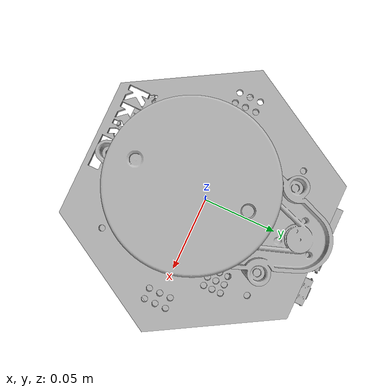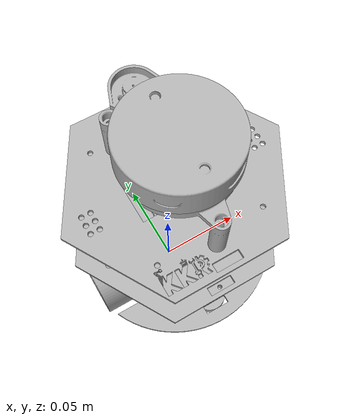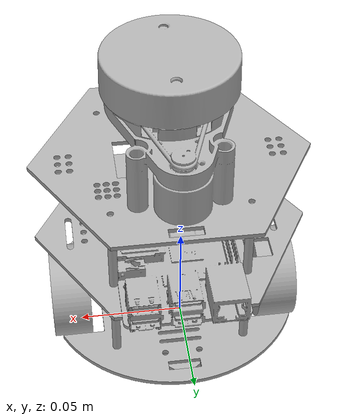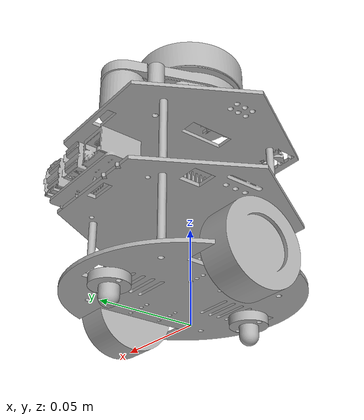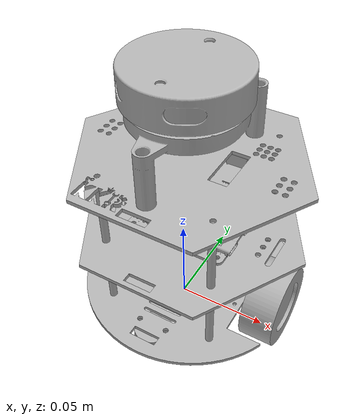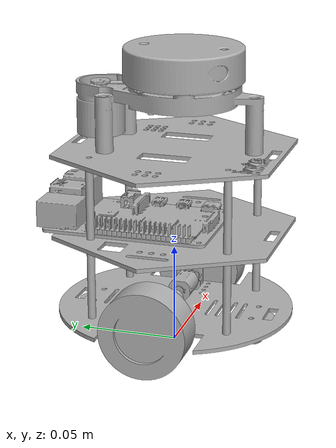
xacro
<?xml version="1.0" ?>
<robot name="bumpy" xmlns:xacro="http://www.ros.org/wiki/xacro">

<xacro:include filename="$(find bumpy_description)/urdf/materials.xacro" />
<xacro:include filename="$(find bumpy_description)/urdf/bumpy.trans" />
<xacro:include filename="$(find bumpy_description)/urdf/bumpy.gazebo" />
<link name="base_link">
  <inertial>
    <origin xyz="0.005020150122786888 0.0006394317987033133 0.016160688670655576" rpy="0 0 0"/>
    <mass value="0.13196884858595095"/>
    <inertia ixx="0.000142" iyy="7.8e-05" izz="0.000219" ixy="0.0" iyz="0.0" ixz="0.0"/>
  </inertial>
  <visual>
    <origin xyz="0 0 0" rpy="0 0 0"/>
    <geometry>
      <mesh filename="package://bumpy_description/meshes/base_link.stl" scale="0.001 0.001 0.001"/>
    </geometry>
    <material name="silver"/>
  </visual>
  <collision>
    <origin xyz="0 0 0" rpy="0 0 0"/>
    <geometry>
      <mesh filename="package://bumpy_description/meshes/base_link.stl" scale="0.001 0.001 0.001"/>
    </geometry>
  </collision>
</link>

<link name="castor1_1">
  <inertial>
    <origin xyz="-0.007999849877212972 2.999094846981021e-07 -0.004550736602734329" rpy="0 0 0"/>
    <mass value="0.016913680348457787"/>
    <inertia ixx="1e-06" iyy="1e-06" izz="1e-06" ixy="0.0" iyz="0.0" ixz="0.0"/>
  </inertial>
  <visual>
    <origin xyz="-0.01302 0.041359 -0.015161" rpy="0 0 0"/>
    <geometry>
      <mesh filename="package://bumpy_description/meshes/castor1_1.stl" scale="0.001 0.001 0.001"/>
    </geometry>
    <material name="silver"/>
  </visual>
  <collision>
    <origin xyz="-0.01302 0.041359 -0.015161" rpy="0 0 0"/>
    <geometry>
      <mesh filename="package://bumpy_description/meshes/castor1_1.stl" scale="0.001 0.001 0.001"/>
    </geometry>
  </collision>
</link>

<link name="Castor_v1_1">
  <inertial>
    <origin xyz="0.00800015012278671 3.011613824502324e-07 -0.004550736602734461" rpy="0 0 0"/>
    <mass value="0.016913680348457787"/>
    <inertia ixx="1e-06" iyy="1e-06" izz="1e-06" ixy="0.0" iyz="-0.0" ixz="0.0"/>
  </inertial>
  <visual>
    <origin xyz="0.00298 -0.042641 -0.015161" rpy="0 0 0"/>
    <geometry>
      <mesh filename="package://bumpy_description/meshes/Castor_v1_1.stl" scale="0.001 0.001 0.001"/>
    </geometry>
    <material name="silver"/>
  </visual>
  <collision>
    <origin xyz="0.00298 -0.042641 -0.015161" rpy="0 0 0"/>
    <geometry>
      <mesh filename="package://bumpy_description/meshes/Castor_v1_1.stl" scale="0.001 0.001 0.001"/>
    </geometry>
  </collision>
</link>

<link name="j1_1">
  <inertial>
    <origin xyz="1.4967575224372753e-07 3.00014311116481e-07 0.019999688670655155" rpy="0 0 0"/>
    <mass value="0.003945840372908612"/>
    <inertia ixx="1e-06" iyy="1e-06" izz="0.0" ixy="0.0" iyz="0.0" ixz="0.0"/>
  </inertial>
  <visual>
    <origin xyz="0.02498 0.034359 -0.017161" rpy="0 0 0"/>
    <geometry>
      <mesh filename="package://bumpy_description/meshes/j1_1.stl" scale="0.001 0.001 0.001"/>
    </geometry>
    <material name="silver"/>
  </visual>
  <collision>
    <origin xyz="0.02498 0.034359 -0.017161" rpy="0 0 0"/>
    <geometry>
      <mesh filename="package://bumpy_description/meshes/j1_1.stl" scale="0.001 0.001 0.001"/>
    </geometry>
  </collision>
</link>

<link name="j2_1">
  <inertial>
    <origin xyz="1.5056982179822986e-07 3.0001431151893687e-07 0.01999968867065573" rpy="0 0 0"/>
    <mass value="0.003945840372908612"/>
    <inertia ixx="1e-06" iyy="1e-06" izz="0.0" ixy="0.0" iyz="0.0" ixz="0.0"/>
  </inertial>
  <visual>
    <origin xyz="-0.03502 0.034359 -0.017161" rpy="0 0 0"/>
    <geometry>
      <mesh filename="package://bumpy_description/meshes/j2_1.stl" scale="0.001 0.001 0.001"/>
    </geometry>
    <material name="silver"/>
  </visual>
  <collision>
    <origin xyz="-0.03502 0.034359 -0.017161" rpy="0 0 0"/>
    <geometry>
      <mesh filename="package://bumpy_description/meshes/j2_1.stl" scale="0.001 0.001 0.001"/>
    </geometry>
  </collision>
</link>

<link name="j3_1">
  <inertial>
    <origin xyz="1.5056982154842968e-07 3.0105739240449125e-07 0.01999968867065564" rpy="0 0 0"/>
    <mass value="0.003945840372908612"/>
    <inertia ixx="1e-06" iyy="1e-06" izz="0.0" ixy="0.0" iyz="0.0" ixz="0.0"/>
  </inertial>
  <visual>
    <origin xyz="-0.03502 -0.035641 -0.017161" rpy="0 0 0"/>
    <geometry>
      <mesh filename="package://bumpy_description/meshes/j3_1.stl" scale="0.001 0.001 0.001"/>
    </geometry>
    <material name="silver"/>
  </visual>
  <collision>
    <origin xyz="-0.03502 -0.035641 -0.017161" rpy="0 0 0"/>
    <geometry>
      <mesh filename="package://bumpy_description/meshes/j3_1.stl" scale="0.001 0.001 0.001"/>
    </geometry>
  </collision>
</link>

<link name="j4_1">
  <inertial>
    <origin xyz="1.4967575191413007e-07 3.0105739196040204e-07 0.01999968867065512" rpy="0 0 0"/>
    <mass value="0.003945840372908612"/>
    <inertia ixx="1e-06" iyy="1e-06" izz="0.0" ixy="0.0" iyz="0.0" ixz="0.0"/>
  </inertial>
  <visual>
    <origin xyz="0.02498 -0.035641 -0.017161" rpy="0 0 0"/>
    <geometry>
      <mesh filename="package://bumpy_description/meshes/j4_1.stl" scale="0.001 0.001 0.001"/>
    </geometry>
    <material name="silver"/>
  </visual>
  <collision>
    <origin xyz="0.02498 -0.035641 -0.017161" rpy="0 0 0"/>
    <geometry>
      <mesh filename="package://bumpy_description/meshes/j4_1.stl" scale="0.001 0.001 0.001"/>
    </geometry>
  </collision>
</link>

<link name="middle_plate_1">
  <inertial>
    <origin xyz="-0.029455713152360674 0.03467972994117939 0.0009996886706552452" rpy="0 0 0"/>
    <mass value="0.1564112211879933"/>
    <inertia ixx="0.00013" iyy="0.000129" izz="0.000259" ixy="-2e-06" iyz="0.0" ixz="-0.0"/>
  </inertial>
  <visual>
    <origin xyz="-0.03502 0.034359 -0.057161" rpy="0 0 0"/>
    <geometry>
      <mesh filename="package://bumpy_description/meshes/middle_plate_1.stl" scale="0.001 0.001 0.001"/>
    </geometry>
    <material name="silver"/>
  </visual>
  <collision>
    <origin xyz="-0.03502 0.034359 -0.057161" rpy="0 0 0"/>
    <geometry>
      <mesh filename="package://bumpy_description/meshes/middle_plate_1.stl" scale="0.001 0.001 0.001"/>
    </geometry>
  </collision>
</link>

<link name="top_plate_1">
  <inertial>
    <origin xyz="0.030159165906477957 -0.034399126332671524 0.0009996886639370567" rpy="0 0 0"/>
    <mass value="0.14869189176611397"/>
    <inertia ixx="0.000125" iyy="0.000129" izz="0.000255" ixy="3e-06" iyz="-0.0" ixz="-0.0"/>
  </inertial>
  <visual>
    <origin xyz="0.02498 -0.035641 -0.099161" rpy="0 0 0"/>
    <geometry>
      <mesh filename="package://bumpy_description/meshes/top_plate_1.stl" scale="0.001 0.001 0.001"/>
    </geometry>
    <material name="silver"/>
  </visual>
  <collision>
    <origin xyz="0.02498 -0.035641 -0.099161" rpy="0 0 0"/>
    <geometry>
      <mesh filename="package://bumpy_description/meshes/top_plate_1.stl" scale="0.001 0.001 0.001"/>
    </geometry>
  </collision>
</link>

<link name="Rasp_pi_v1_1">
  <inertial>
    <origin xyz="-0.02503888735258649 -0.004447661323638719 0.0049926779577120425" rpy="0 0 0"/>
    <mass value="0.14743973867042878"/>
    <inertia ixx="0.0001" iyy="4.3e-05" izz="0.000136" ixy="-1e-06" iyz="-1e-05" ixz="-0.0"/>
  </inertial>
  <visual>
    <origin xyz="-0.029874 -0.03964 -0.059161" rpy="0 0 0"/>
    <geometry>
      <mesh filename="package://bumpy_description/meshes/Rasp_pi_v1_1.stl" scale="0.001 0.001 0.001"/>
    </geometry>
    <material name="silver"/>
  </visual>
  <collision>
    <origin xyz="-0.029874 -0.03964 -0.059161" rpy="0 0 0"/>
    <geometry>
      <mesh filename="package://bumpy_description/meshes/Rasp_pi_v1_1.stl" scale="0.001 0.001 0.001"/>
    </geometry>
  </collision>
</link>

<link name="j7_1">
  <inertial>
    <origin xyz="1.5056982149291853e-07 3.0001431167159254e-07 0.019999688670655304" rpy="0 0 0"/>
    <mass value="0.003945840372908612"/>
    <inertia ixx="1e-06" iyy="1e-06" izz="0.0" ixy="0.0" iyz="0.0" ixz="0.0"/>
  </inertial>
  <visual>
    <origin xyz="-0.03502 0.034359 -0.059161" rpy="0 0 0"/>
    <geometry>
      <mesh filename="package://bumpy_description/meshes/j7_1.stl" scale="0.001 0.001 0.001"/>
    </geometry>
    <material name="silver"/>
  </visual>
  <collision>
    <origin xyz="-0.03502 0.034359 -0.059161" rpy="0 0 0"/>
    <geometry>
      <mesh filename="package://bumpy_description/meshes/j7_1.stl" scale="0.001 0.001 0.001"/>
    </geometry>
  </collision>
</link>

<link name="j6_1">
  <inertial>
    <origin xyz="1.5056982136107955e-07 3.010573925710247e-07 0.019999688670655304" rpy="0 0 0"/>
    <mass value="0.003945840372908612"/>
    <inertia ixx="1e-06" iyy="1e-06" izz="0.0" ixy="0.0" iyz="0.0" ixz="0.0"/>
  </inertial>
  <visual>
    <origin xyz="-0.03502 -0.035641 -0.059161" rpy="0 0 0"/>
    <geometry>
      <mesh filename="package://bumpy_description/meshes/j6_1.stl" scale="0.001 0.001 0.001"/>
    </geometry>
    <material name="silver"/>
  </visual>
  <collision>
    <origin xyz="-0.03502 -0.035641 -0.059161" rpy="0 0 0"/>
    <geometry>
      <mesh filename="package://bumpy_description/meshes/j6_1.stl" scale="0.001 0.001 0.001"/>
    </geometry>
  </collision>
</link>

<link name="j5_1">
  <inertial>
    <origin xyz="1.4967575182392445e-07 3.010573919950965e-07 0.0199996886706549" rpy="0 0 0"/>
    <mass value="0.003945840372908612"/>
    <inertia ixx="1e-06" iyy="1e-06" izz="0.0" ixy="0.0" iyz="0.0" ixz="0.0"/>
  </inertial>
  <visual>
    <origin xyz="0.02498 -0.035641 -0.059161" rpy="0 0 0"/>
    <geometry>
      <mesh filename="package://bumpy_description/meshes/j5_1.stl" scale="0.001 0.001 0.001"/>
    </geometry>
    <material name="silver"/>
  </visual>
  <collision>
    <origin xyz="0.02498 -0.035641 -0.059161" rpy="0 0 0"/>
    <geometry>
      <mesh filename="package://bumpy_description/meshes/j5_1.stl" scale="0.001 0.001 0.001"/>
    </geometry>
  </collision>
</link>

<link name="j8_1">
  <inertial>
    <origin xyz="1.4967575211882744e-07 3.0001431130383116e-07 0.019999688670654915" rpy="0 0 0"/>
    <mass value="0.003945840372908612"/>
    <inertia ixx="1e-06" iyy="1e-06" izz="0.0" ixy="0.0" iyz="0.0" ixz="0.0"/>
  </inertial>
  <visual>
    <origin xyz="0.02498 0.034359 -0.059161" rpy="0 0 0"/>
    <geometry>
      <mesh filename="package://bumpy_description/meshes/j8_1.stl" scale="0.001 0.001 0.001"/>
    </geometry>
    <material name="silver"/>
  </visual>
  <collision>
    <origin xyz="0.02498 0.034359 -0.059161" rpy="0 0 0"/>
    <geometry>
      <mesh filename="package://bumpy_description/meshes/j8_1.stl" scale="0.001 0.001 0.001"/>
    </geometry>
  </collision>
</link>

<link name="motor_left_1">
  <inertial>
    <origin xyz="0.0191111631402495 0.005070653393270568 -0.010174742095541495" rpy="0 0 0"/>
    <mass value="0.01081652208463691"/>
    <inertia ixx="0.0" iyy="1e-06" izz="1e-06" ixy="-0.0" iyz="-0.0" ixz="0.0"/>
  </inertial>
  <visual>
    <origin xyz="-0.005661 0.004379 -0.032321" rpy="0 0 0"/>
    <geometry>
      <mesh filename="package://bumpy_description/meshes/motor_left_1.stl" scale="0.001 0.001 0.001"/>
    </geometry>
    <material name="silver"/>
  </visual>
  <collision>
    <origin xyz="-0.005661 0.004379 -0.032321" rpy="0 0 0"/>
    <geometry>
      <mesh filename="package://bumpy_description/meshes/motor_left_1.stl" scale="0.001 0.001 0.001"/>
    </geometry>
  </collision>
</link>

<link name="motor_right_1">
  <inertial>
    <origin xyz="-0.02039286289467567 0.004969947677596402 -0.010174742095541568" rpy="0 0 0"/>
    <mass value="0.01081652208463691"/>
    <inertia ixx="0.0" iyy="1e-06" izz="1e-06" ixy="-0.0" iyz="0.0" ixz="-0.0"/>
  </inertial>
  <visual>
    <origin xyz="-0.005661 0.004379 -0.032321" rpy="0 0 0"/>
    <geometry>
      <mesh filename="package://bumpy_description/meshes/motor_right_1.stl" scale="0.001 0.001 0.001"/>
    </geometry>
    <material name="silver"/>
  </visual>
  <collision>
    <origin xyz="-0.005661 0.004379 -0.032321" rpy="0 0 0"/>
    <geometry>
      <mesh filename="package://bumpy_description/meshes/motor_right_1.stl" scale="0.001 0.001 0.001"/>
    </geometry>
  </collision>
</link>

<link name="wheel_v3__1__1">
  <inertial>
    <origin xyz="-0.008628963485632503 4.336328124550934e-07 -3.1215096472914095e-07" rpy="0 0 0"/>
    <mass value="0.20533166812154216"/>
    <inertia ixx="5.1e-05" iyy="3.1e-05" izz="3.1e-05" ixy="0.0" iyz="0.0" ixz="-0.0"/>
  </inertial>
  <visual>
    <origin xyz="0.03523 -0.000641 -0.022161" rpy="0 0 0"/>
    <geometry>
      <mesh filename="package://bumpy_description/meshes/wheel_v3__1__1.stl" scale="0.001 0.001 0.001"/>
    </geometry>
    <material name="silver"/>
  </visual>
  <collision>
    <origin xyz="0.03523 -0.000641 -0.022161" rpy="0 0 0"/>
    <geometry>
      <mesh filename="package://bumpy_description/meshes/wheel_v3__1__1.stl" scale="0.001 0.001 0.001"/>
    </geometry>
  </collision>
</link>

<link name="wheel_v3_1">
  <inertial>
    <origin xyz="0.008629263731206642 1.6743805450231304e-07 -3.1215096454526026e-07" rpy="0 0 0"/>
    <mass value="0.20533166812154216"/>
    <inertia ixx="5.1e-05" iyy="3.1e-05" izz="3.1e-05" ixy="0.0" iyz="-0.0" ixz="-0.0"/>
  </inertial>
  <visual>
    <origin xyz="-0.04527 -0.000641 -0.022161" rpy="0 0 0"/>
    <geometry>
      <mesh filename="package://bumpy_description/meshes/wheel_v3_1.stl" scale="0.001 0.001 0.001"/>
    </geometry>
    <material name="silver"/>
  </visual>
  <collision>
    <origin xyz="-0.04527 -0.000641 -0.022161" rpy="0 0 0"/>
    <geometry>
      <mesh filename="package://bumpy_description/meshes/wheel_v3_1.stl" scale="0.001 0.001 0.001"/>
    </geometry>
  </collision>
</link>

<link name="ydliar_X2_Bottom_v3_1">
  <inertial>
    <origin xyz="-0.018087969995984755 -0.01724386811130199 0.014919481072768484" rpy="0 0 0"/>
    <mass value="0.032841802013098984"/>
    <inertia ixx="2.5e-05" iyy="1e-05" izz="2.9e-05" ixy="-0.0" iyz="2e-06" ixz="0.0"/>
  </inertial>
  <visual>
    <origin xyz="-0.023051 -0.031922 -0.101161" rpy="0 0 0"/>
    <geometry>
      <mesh filename="package://bumpy_description/meshes/ydliar_X2_Bottom_v3_1.stl" scale="0.001 0.001 0.001"/>
    </geometry>
    <material name="silver"/>
  </visual>
  <collision>
    <origin xyz="-0.023051 -0.031922 -0.101161" rpy="0 0 0"/>
    <geometry>
      <mesh filename="package://bumpy_description/meshes/ydliar_X2_Bottom_v3_1.stl" scale="0.001 0.001 0.001"/>
    </geometry>
  </collision>
</link>

<link name="ydliar_X2_top_v3_1">
  <inertial>
    <origin xyz="2.7291797662955253e-08 3.1633273486764146e-07 0.00799968867065412" rpy="0 0 0"/>
    <mass value="0.3410355040901578"/>
    <inertia ixx="8.1e-05" iyy="8.1e-05" izz="0.000147" ixy="-0.0" iyz="0.0" ixz="-0.0"/>
  </inertial>
  <visual>
    <origin xyz="-0.004647 0.003578 -0.135161" rpy="0 0 0"/>
    <geometry>
      <mesh filename="package://bumpy_description/meshes/ydliar_X2_top_v3_1.stl" scale="0.001 0.001 0.001"/>
    </geometry>
    <material name="silver"/>
  </visual>
  <collision>
    <origin xyz="-0.004647 0.003578 -0.135161" rpy="0 0 0"/>
    <geometry>
      <mesh filename="package://bumpy_description/meshes/ydliar_X2_top_v3_1.stl" scale="0.001 0.001 0.001"/>
    </geometry>
  </collision>
</link>

<joint name="Rigid 5" type="fixed">
  <origin xyz="0.01302 -0.041359 0.015161" rpy="0 0 0"/>
  <parent link="base_link"/>
  <child link="castor1_1"/>
</joint>

<joint name="Rigid 6" type="fixed">
  <origin xyz="-0.00298 0.042641 0.015161" rpy="0 0 0"/>
  <parent link="base_link"/>
  <child link="Castor_v1_1"/>
</joint>

<joint name="Rigid 7" type="fixed">
  <origin xyz="-0.02498 -0.034359 0.017161" rpy="0 0 0"/>
  <parent link="base_link"/>
  <child link="j1_1"/>
</joint>

<joint name="Rigid 8" type="fixed">
  <origin xyz="0.03502 -0.034359 0.017161" rpy="0 0 0"/>
  <parent link="base_link"/>
  <child link="j2_1"/>
</joint>

<joint name="Rigid 9" type="fixed">
  <origin xyz="0.03502 0.035641 0.017161" rpy="0 0 0"/>
  <parent link="base_link"/>
  <child link="j3_1"/>
</joint>

<joint name="Rigid 10" type="fixed">
  <origin xyz="-0.02498 0.035641 0.017161" rpy="0 0 0"/>
  <parent link="base_link"/>
  <child link="j4_1"/>
</joint>

<joint name="Rigid 11" type="fixed">
  <origin xyz="0.0 0.0 0.04" rpy="0 0 0"/>
  <parent link="j2_1"/>
  <child link="middle_plate_1"/>
</joint>

<joint name="Rigid 16" type="fixed">
  <origin xyz="0.0 0.0 0.04" rpy="0 0 0"/>
  <parent link="j5_1"/>
  <child link="top_plate_1"/>
</joint>

<joint name="Rigid 19" type="fixed">
  <origin xyz="-0.005146 0.073999 0.002" rpy="0 0 0"/>
  <parent link="middle_plate_1"/>
  <child link="Rasp_pi_v1_1"/>
</joint>

<joint name="Rigid 20" type="fixed">
  <origin xyz="0.0 0.0 0.002" rpy="0 0 0"/>
  <parent link="middle_plate_1"/>
  <child link="j7_1"/>
</joint>

<joint name="Rigid 21" type="fixed">
  <origin xyz="0.0 0.07 0.002" rpy="0 0 0"/>
  <parent link="middle_plate_1"/>
  <child link="j6_1"/>
</joint>

<joint name="Rigid 22" type="fixed">
  <origin xyz="-0.06 0.07 0.002" rpy="0 0 0"/>
  <parent link="middle_plate_1"/>
  <child link="j5_1"/>
</joint>

<joint name="Rigid 23" type="fixed">
  <origin xyz="-0.06 0.0 0.002" rpy="0 0 0"/>
  <parent link="middle_plate_1"/>
  <child link="j8_1"/>
</joint>

<joint name="Rigid 32" type="fixed">
  <origin xyz="0.005661 -0.004379 0.032321" rpy="0 0 0"/>
  <parent link="base_link"/>
  <child link="motor_left_1"/>
</joint>

<joint name="Rigid 33" type="fixed">
  <origin xyz="0.005661 -0.004379 0.032321" rpy="0 0 0"/>
  <parent link="base_link"/>
  <child link="motor_right_1"/>
</joint>

<joint name="joint_right" type="continuous">
  <origin xyz="-0.040891 0.00502 -0.01016" rpy="0 0 0"/>
  <parent link="motor_right_1"/>
  <child link="wheel_v3__1__1"/>
  <axis xyz="1.0 -0.0 -0.0"/>
</joint>

<joint name="joint_left" type="continuous">
  <origin xyz="0.039609 0.00502 -0.01016" rpy="0 0 0"/>
  <parent link="motor_left_1"/>
  <child link="wheel_v3_1"/>
  <axis xyz="1.0 0.0 0.0"/>
</joint>

<joint name="Rigid 40" type="fixed">
  <origin xyz="0.048031 -0.003719 0.002" rpy="0 0 0"/>
  <parent link="top_plate_1"/>
  <child link="ydliar_X2_Bottom_v3_1"/>
</joint>

<joint name="joint_lidar" type="continuous">
  <origin xyz="-0.018404 -0.0355 0.034" rpy="0 0 0"/>
  <parent link="ydliar_X2_Bottom_v3_1"/>
  <child link="ydliar_X2_top_v3_1"/>
  <axis xyz="-0.0 0.0 1.0"/>
</joint>

</robot>

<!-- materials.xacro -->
<robot name="bumpy" xmlns:xacro="http://www.ros.org/wiki/xacro" >

<material name="silver">
  <color rgba="0.700 0.700 0.700 1.000"/>
</material>

</robot>

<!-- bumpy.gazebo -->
<robot name="bumpy" xmlns:xacro="http://www.ros.org/wiki/xacro" >

<xacro:property name="black" value="Gazebo/Black" />
<xacro:property name="yellow" value="Gazebo/Yellow" />
<xacro:property name="green" value="Gazebo/Green" />
<xacro:property name="blue" value="Gazebo/Blue" />
<xacro:property name="red" value="Gazebo/Red" />
<xacro:property name="grey" value="Gazebo/Grey" />
<xacro:property name="silver" value="Gazebo/Silver" />
<xacro:property name="white" value="Gazebo/White" />
<xacro:property name="orange" value="Gazebo/White" />

<gazebo>
  <plugin name="control" filename="libgazebo_ros_control.so"/>
</gazebo>
<gazebo reference="base_link">
  <material>${black}</material>
  <mu1>0.2</mu1>
  <mu2>0.2</mu2>
  <selfCollide>true</selfCollide>
  <gravity>true</gravity>
</gazebo>
<gazebo reference="castor1_1">
  <material>${white}</material>
  <mu1>0.2</mu1>
  <mu2>0.2</mu2>
  <selfCollide>true</selfCollide>
</gazebo>

<gazebo reference="Castor_v1_1">
  <material>${white}</material>
  <mu1>0.2</mu1>
  <mu2>0.2</mu2>
  <selfCollide>true</selfCollide>
</gazebo>

<gazebo reference="j1_1">
  <material>${yellow}</material>
  <mu1>0.2</mu1>
  <mu2>0.2</mu2>
  <selfCollide>true</selfCollide>
</gazebo>

<gazebo reference="j2_1">
  <material>${yellow}</material>
  <mu1>0.2</mu1>
  <mu2>0.2</mu2>
  <selfCollide>true</selfCollide>
</gazebo>

<gazebo reference="j3_1">
  <material>${yellow}</material>
  <mu1>0.2</mu1>
  <mu2>0.2</mu2>
  <selfCollide>true</selfCollide>
</gazebo>

<gazebo reference="j4_1">
  <material>${yellow}</material>
  <mu1>0.2</mu1>
  <mu2>0.2</mu2>
  <selfCollide>true</selfCollide>
</gazebo>

<gazebo reference="middle_plate_1">
  <material>${black}</material>
  <mu1>0.2</mu1>
  <mu2>0.2</mu2>
  <selfCollide>true</selfCollide>
</gazebo>

<gazebo reference="top_plate_1">
  <material>${black}</material>
  <mu1>0.2</mu1>
  <mu2>0.2</mu2>
  <selfCollide>true</selfCollide>
</gazebo>

<gazebo reference="Rasp_pi_v1_1">
  <material>${green}</material>
  <mu1>0.2</mu1>
  <mu2>0.2</mu2>
  <selfCollide>true</selfCollide>
</gazebo>

<gazebo reference="j7_1">
  <material>${yellow}</material>
  <mu1>0.2</mu1>
  <mu2>0.2</mu2>
  <selfCollide>true</selfCollide>
</gazebo>

<gazebo reference="j6_1">
  <material>${yellow}</material>
  <mu1>0.2</mu1>
  <mu2>0.2</mu2>
  <selfCollide>true</selfCollide>
</gazebo>

<gazebo reference="j5_1">
  <material>${yellow}</material>
  <mu1>0.2</mu1>
  <mu2>0.2</mu2>
  <selfCollide>true</selfCollide>
</gazebo>

<gazebo reference="j8_1">
  <material>${yellow}</material>
  <mu1>0.2</mu1>
  <mu2>0.2</mu2>
  <selfCollide>true</selfCollide>
</gazebo>

<gazebo reference="motor_left_1">
  <material>${orange}</material>
  <mu1>0.2</mu1>
  <mu2>0.2</mu2>
  <selfCollide>true</selfCollide>
</gazebo>

<gazebo reference="motor_right_1">
  <material>${orange}</material>
  <mu1>0.2</mu1>
  <mu2>0.2</mu2>
  <selfCollide>true</selfCollide>
</gazebo>

<gazebo reference="wheel_v3__1__1">
  <material>${black}</material>
  <mu1>0.2</mu1>
  <mu2>0.2</mu2>
  <selfCollide>true</selfCollide>
</gazebo>

<gazebo reference="wheel_v3_1">
  <material>${black}</material>
  <mu1>0.2</mu1>
  <mu2>0.2</mu2>
  <selfCollide>true</selfCollide>
</gazebo>

<gazebo reference="ydliar_X2_Bottom_v3_1">
  <material>${silver}</material>
  <mu1>0.2</mu1>
  <mu2>0.2</mu2>
  <selfCollide>true</selfCollide>
</gazebo>

<gazebo reference="ydliar_X2_top_v3_1">
  <material>${blue}</material>
  <mu1>0.2</mu1>
  <mu2>0.2</mu2>
  <selfCollide>true</selfCollide>
</gazebo>
<!-- ... other components with materials and properties ... -->

<gazebo>
  <plugin name="differential_drive_controller" filename="libgazebo_ros_diff_drive.so">

    <!-- Plugin update rate in Hz -->
    <updateRate>100</updateRate>

    <!-- Name of left joint, defaults to `left_joint` -->
    <leftJoint>joint_left</leftJoint>

    <!-- Name of right joint, defaults to `right_joint` -->
    <rightJoint>joint_right</rightJoint>

    <!-- The distance from the center of one wheel to the other, in meters, defaults to 0.34 m -->
    <wheelSeparation>0.5380</wheelSeparation>

    <!-- Diameter of the wheels, in meters, defaults to 0.15 m -->
    <wheelDiameter>0.0040</wheelDiameter>

    <!-- Wheel acceleration, in rad/s^2, defaults to 0.0 rad/s^2 -->
    <wheelAcceleration>10.0</wheelAcceleration>

    <!-- Maximum torque which the wheels can produce, in Nm, defaults to 5 Nm -->
    <wheelTorque>20</wheelTorque>

    <!-- Topic to receive geometry_msgs/Twist message commands, defaults to `cmd_vel` -->
    <commandTopic>cmd_vel</commandTopic>

    <!-- Topic to publish nav_msgs/Odometry messages, defaults to `odom` -->
    <odometryTopic>odom</odometryTopic>

    <!-- Odometry frame, defaults to `odom` -->
    <odometryFrame>odom</odometryFrame>

    <!-- Robot frame to calculate odometry from, defaults to `base_footprint` -->
    <robotBaseFrame>base_link</robotBaseFrame>

    <!-- Odometry source, 0 for ENCODER, 1 for WORLD, defaults to WORLD -->
    <odometrySource>1</odometrySource>

    <!-- Set to true to publish transforms for the wheel links, defaults to false -->
    <publishWheelTF>false</publishWheelTF>

    <!-- Set to true to publish transforms for the odometry, defaults to true -->
    <publishOdom>true</publishOdom>

    <!-- Set to true to publish sensor_msgs/JointState on /joint_states for the wheel joints, defaults to false -->
    <publishWheelJointState>true</publishWheelJointState>

    <!-- Set to true to swap right and left wheels, defaults to true -->
    <legacyMode>false</legacyMode>
  </plugin>
</gazebo>

<plugin name="wheel_drive_controller" filename="libgazebo_ros_diff_drive.so">

  <!-- wheels -->
  <num_wheel_pairs>2</num_wheel_pairs>
  <left_joint>joint_left</left_joint>
  <right_joint>joint_right</right_joint>

  <!-- kinematics -->
  <wheel_separation>0.5380</wheel_separation>
  <wheel_diameter>0.0040</wheel_diameter>
  <max_wheel_torque>20.0</max_wheel_torque>
  <max_wheel_acceleration>1.0</max_wheel_acceleration>

  <!-- odometry  -->
  <odometry_source>world</odometry_source>
  <odometry_frame>odom</odometry_frame>
  <robot_base_frame>base_link</robot_base_frame>

    <!-- Topic to receive geometry_msgs/Twist message commands, defaults to `cmd_vel` -->
    <commandTopic>cmd_vel</commandTopic>

    <!-- Topic to publish nav_msgs/Odometry messages, defaults to `odom` -->
    <odometryTopic>odom</odometryTopic>

    <!-- Odometry frame, defaults to `odom` -->
    <odometryFrame>odom</odometryFrame>

  <publish_odom>true</publish_odom>
  <publish_odom_tf>false</publish_odom_tf>
  <update_rate>100.0</update_rate>
</plugin>

<!-- hokuyo -->
  <gazebo reference="ydliar_X2_top_v3_1">
        <sensor type="ray" name="head_hokuyo_sensor">
      <pose>0 0 0 0 0 0</pose>
      <visualize>true</visualize>
      <update_rate>40</update_rate>
      <ray>
        <scan>
          <horizontal>
            <samples>720</samples>
            <resolution>1</resolution>
            <min_angle>-1.570796</min_angle>
            <max_angle>1.570796</max_angle>
          </horizontal>
        </scan>
        <range>
          <min>0.10</min>
          <max>30.0</max>
          <resolution>0.01</resolution>
        </range>
        <noise>
          <type>gaussian</type>
          <mean>0.0</mean>
          <stddev>0.01</stddev>
        </noise>
      </ray>
      <plugin name="gazebo_ros_head_hokuyo_controller" filename="libgazebo_ros_laser.so">
        <topicName>/scan</topicName>
        <frameName>ydliar_X2_top_v3_1</frameName>
      </plugin>
    </sensor>
  </gazebo>
</robot>
